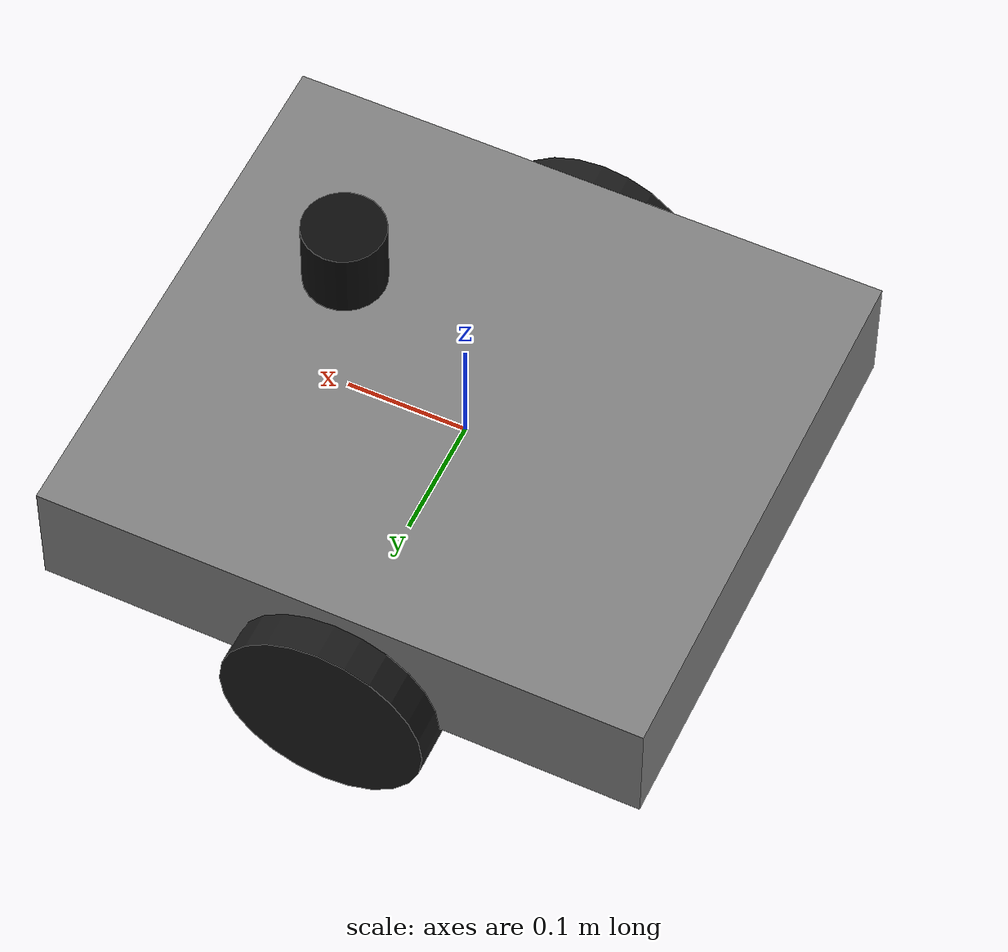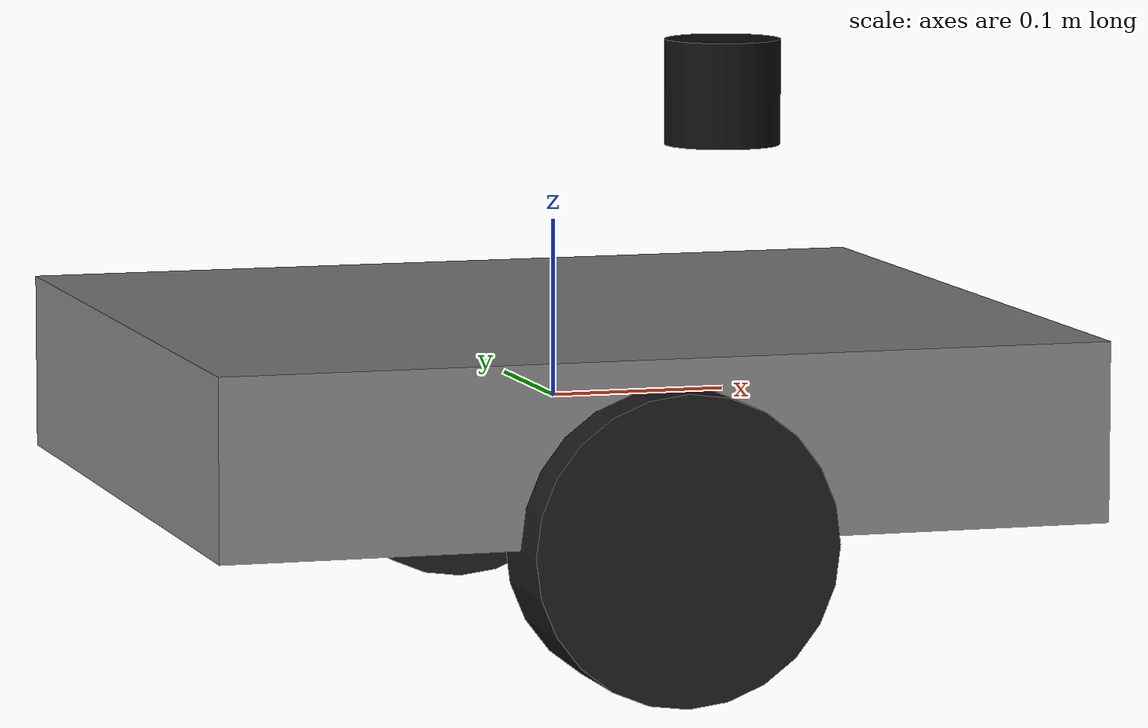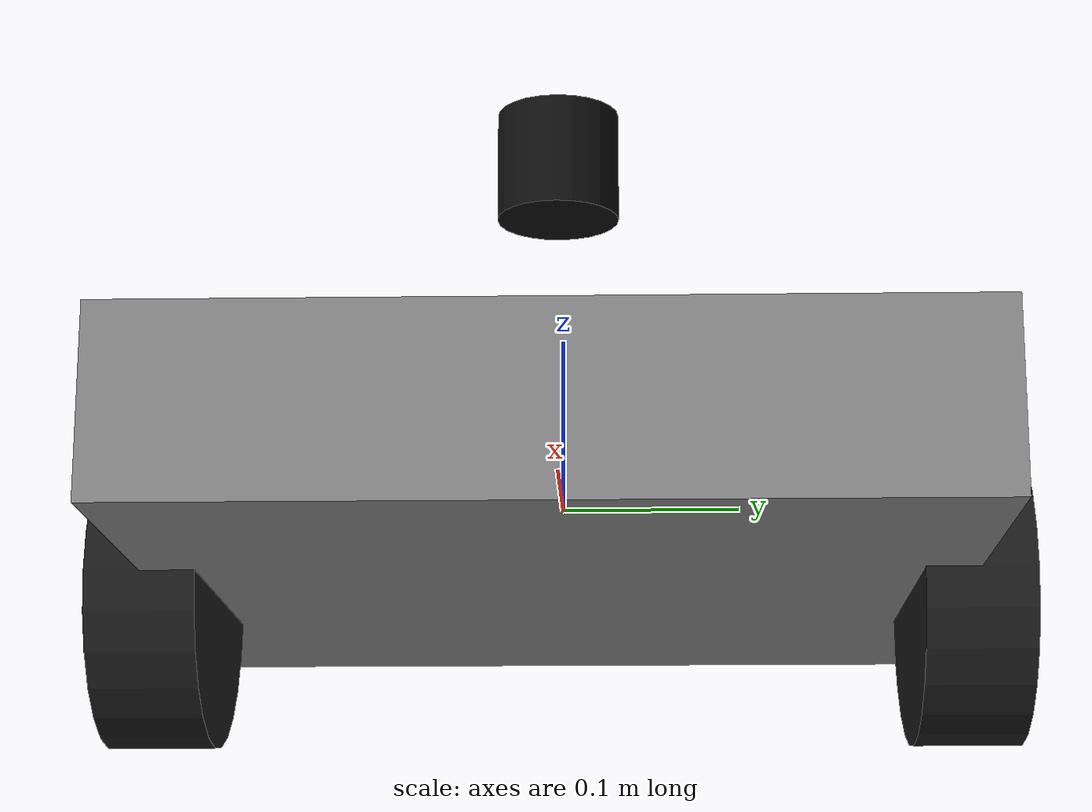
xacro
<?xml version="1.0"?>
<robot xmlns:xacro="http://www.ros.org/wiki/xacro" name="hoverboard_robot">

  <xacro:property name="wheel_radius" value="0.085"/>
  <xacro:property name="wheel_width"  value="0.06"/>
  <xacro:property name="wheel_base"   value="0.45"/>

  <xacro:property name="body_length"  value="0.50"/>
  <xacro:property name="body_width"   value="0.45"/>
  <xacro:property name="body_height"  value="0.10"/>

  <!-- Livox Mid-360 position: ajuste pra refletir onde o Mid-360 foi montado.
       lidar_x: offset pra frente a partir do centro do base_link (m).
       lidar_z: altura acima do topo do corpo (m). -->
  <xacro:property name="lidar_x"      value="0.10"/>
  <xacro:property name="lidar_z"      value="0.12"/>
  <!-- Mid-360: cilindro ~65 mm de diâmetro por ~60 mm de altura. -->
  <xacro:property name="livox_radius" value="0.033"/>
  <xacro:property name="livox_height" value="0.060"/>

  <!-- pi já existe no xacro como constante embutida -->

  <!-- base_link é raiz do URDF. O TF body->base_link é publicado pelo
       fast_lio.launch.py (static_transform_publisher), colocando o robô embaixo
       do Mid-360 que o FAST-LIO2 rastreia. -->

  <!-- ======= base_link (center of robot body) ======= -->
  <link name="base_link">
    <visual>
      <geometry>
        <box size="${body_length} ${body_width} ${body_height}"/>
      </geometry>
      <material name="grey">
        <color rgba="0.5 0.5 0.5 1.0"/>
      </material>
    </visual>
    <collision>
      <geometry>
        <box size="${body_length} ${body_width} ${body_height}"/>
      </geometry>
    </collision>
    <inertial>
      <mass value="10.0"/>
      <inertia ixx="0.1" ixy="0" ixz="0" iyy="0.1" iyz="0" izz="0.1"/>
    </inertial>
  </link>

  <!-- ======= Left Wheel ======= -->
  <joint name="left_wheel_joint" type="continuous">
    <parent link="base_link"/>
    <child link="left_wheel"/>
    <origin xyz="0 ${wheel_base/2} ${-body_height/2}" rpy="${-pi/2} 0 0"/>
    <axis xyz="0 0 1"/>
  </joint>

  <link name="left_wheel">
    <visual>
      <geometry>
        <cylinder radius="${wheel_radius}" length="${wheel_width}"/>
      </geometry>
      <material name="black">
        <color rgba="0.1 0.1 0.1 1.0"/>
      </material>
    </visual>
    <collision>
      <geometry>
        <cylinder radius="${wheel_radius}" length="${wheel_width}"/>
      </geometry>
    </collision>
    <inertial>
      <mass value="1.5"/>
      <inertia ixx="0.005" ixy="0" ixz="0" iyy="0.005" iyz="0" izz="0.009"/>
    </inertial>
  </link>

  <!-- ======= Right Wheel ======= -->
  <joint name="right_wheel_joint" type="continuous">
    <parent link="base_link"/>
    <child link="right_wheel"/>
    <origin xyz="0 ${-wheel_base/2} ${-body_height/2}" rpy="${pi/2} 0 0"/>
    <axis xyz="0 0 1"/>
  </joint>

  <link name="right_wheel">
    <visual>
      <geometry>
        <cylinder radius="${wheel_radius}" length="${wheel_width}"/>
      </geometry>
      <material name="black">
        <color rgba="0.1 0.1 0.1 1.0"/>
      </material>
    </visual>
    <collision>
      <geometry>
        <cylinder radius="${wheel_radius}" length="${wheel_width}"/>
      </geometry>
    </collision>
    <inertial>
      <mass value="1.5"/>
      <inertia ixx="0.005" ixy="0" ixz="0" iyy="0.005" iyz="0" izz="0.009"/>
    </inertial>
  </link>

  <joint name="livox_joint" type="fixed">
    <parent link="base_link"/>
    <child link="livox_frame"/>
    <origin xyz="${lidar_x} 0 ${body_height/2 + lidar_z}" rpy="0 0 0"/>
  </joint>

  <link name="livox_frame">
    <visual>
      <geometry>
        <cylinder radius="${livox_radius}" length="${livox_height}"/>
      </geometry>
      <material name="black">
        <color rgba="0.05 0.05 0.05 1.0"/>
      </material>
    </visual>
    <collision>
      <geometry>
        <cylinder radius="${livox_radius}" length="${livox_height}"/>
      </geometry>
    </collision>
    <inertial>
      <mass value="0.265"/>
      <inertia ixx="0.0002" ixy="0" ixz="0" iyy="0.0002" iyz="0" izz="0.0002"/>
    </inertial>
  </link>

</robot>
